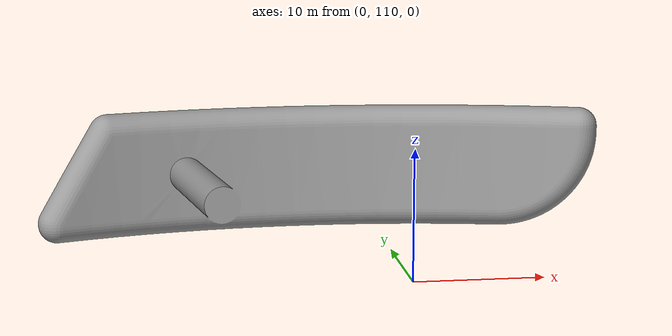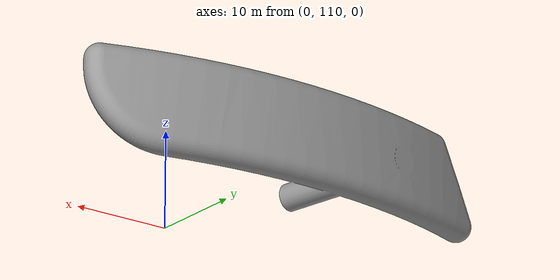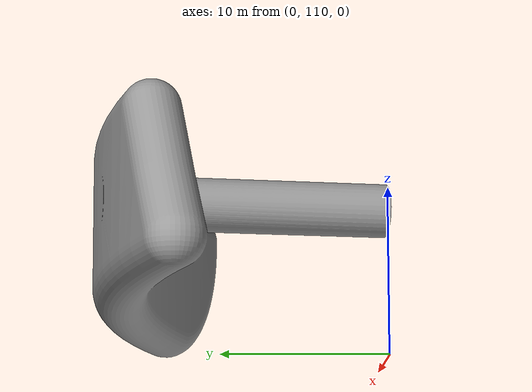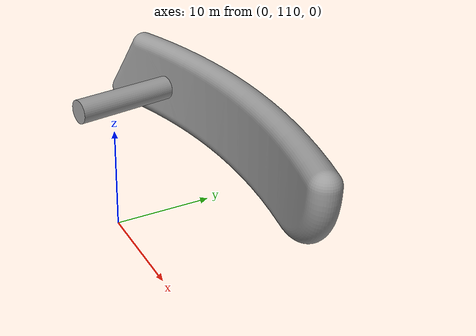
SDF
<?xml version='1.0'?>
<sdf version='1.5'>
  <model name='eyebrown_right'>
    <pose>-28 62 0.5 0 -0 0</pose>
    <link name='defaultModel_0::custom_0'>
      <pose>0 0 0 0 -0 0</pose>
      <gravity>1</gravity>
      <self_collide>0</self_collide>
      <kinematic>0</kinematic>
      <visual name='custom_0_visual'>
        <pose>0 0 0 0 -0 0</pose>
        <geometry>
          <mesh>
            <uri>/media/trannguyenphuongtrinh_eeit13/01D0512D26AB19B0/ROBOT/retry2/eyebrown/long-may-phai.STL</uri>
            <scale>1 1 1</scale>
          </mesh>
        </geometry>
        <material>
          <script>
            <uri>file://media/materials/scripts/gazebo.material</uri>
            <name>Gazebo/Grey</name>
          </script>
        </material>
      </visual>
      <collision name='defaultModel_0::custom_0_collision'>
        <geometry>
          <mesh>
            <uri>/media/trannguyenphuongtrinh_eeit13/01D0512D26AB19B0/ROBOT/retry2/eyebrown/long-may-phai.STL</uri>
            <scale>1 1 1</scale>
          </mesh>
        </geometry>
        <pose>0 0 0 0 -0 0</pose>
      </collision>
    </link>
    <static>0</static>
    <allow_auto_disable>1</allow_auto_disable>
  </model>
</sdf>
